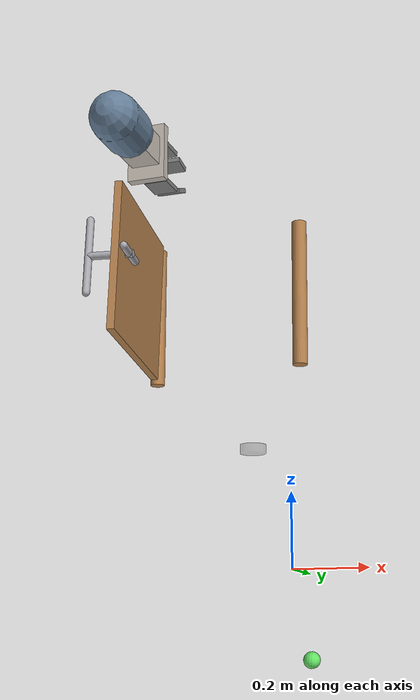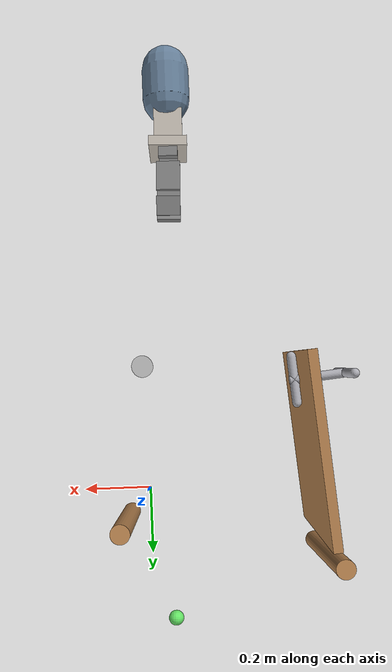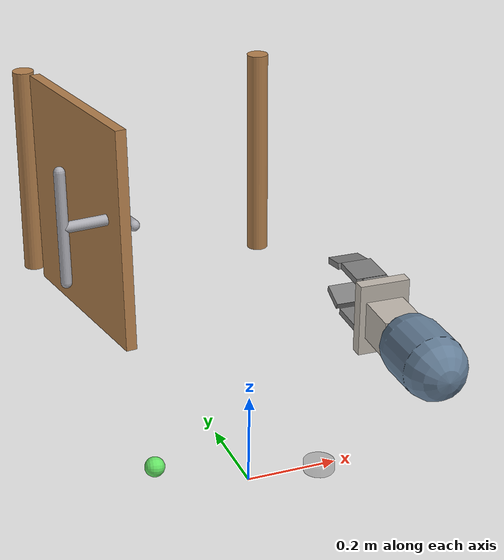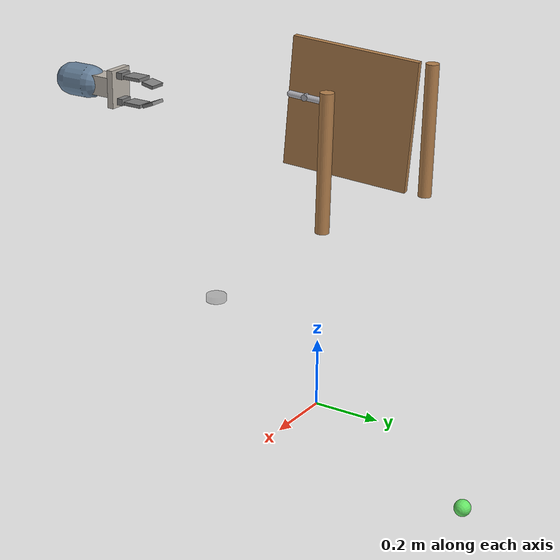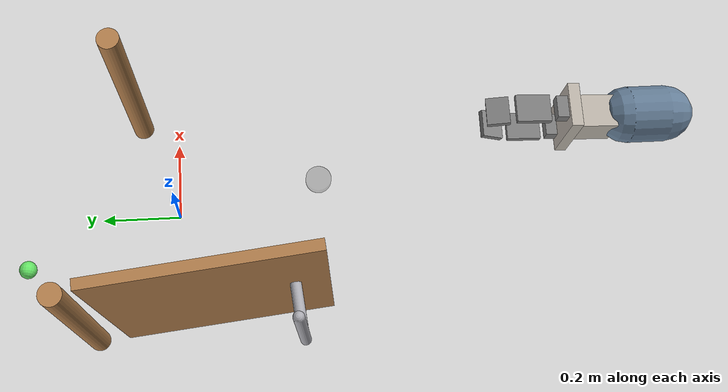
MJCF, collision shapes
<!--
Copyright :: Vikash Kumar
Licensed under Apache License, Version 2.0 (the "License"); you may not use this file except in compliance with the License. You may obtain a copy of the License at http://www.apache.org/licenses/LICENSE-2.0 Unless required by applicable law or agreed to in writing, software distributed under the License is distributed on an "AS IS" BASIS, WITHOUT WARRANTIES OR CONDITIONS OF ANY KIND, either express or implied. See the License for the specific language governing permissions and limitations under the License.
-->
<mujoco model='ADROIT-door(v1.5)'>

    <!-- ======= WORLD ======= -->
    <worldbody>
        <light directional='false' diffuse='.7 .7 .7' specular='0.03 0.03 0.03' pos='-1 -1.0 4.0' dir='1 1.0 -4'/>
        <camera name="fixed" pos="0.9 -0.7 0.7" quat="0.92388 0.382683 0 0" />
        <!-- Camera for the VIL paper -->
        <camera name="vil_camera" pos="0 -1.2 1.2" quat="0.92388 0.382683 0 0" />

        <!-- ======= MOCAP ======= -->
        <body name="vive_tracker" pos="0 -0.35 0.25" mocap="true">
            <inertial pos="0 0 0" mass="0.064" diaginertia="1.70667e-05 1.70667e-05 1.70667e-05" />
            <geom size="0.03 0.01" type="cylinder" contype="0" conaffinity="0" group="3" rgba="0.3 0.3 0.3 0.3" />
        </body>

        <!-- ======= HAND ======= -->
        <body name="forearm" pos="-0.1 -1.2 0.8" euler="-1.57 0 3.14">
            <inertial pos="0 0 0" mass="0.4"/>
            <joint name="ARRy" pos="0 0 0" axis="0 1 0" range="-0.5 1" damping="20" />
            <joint name="ARTz" pos="0 0 0" axis="0 0 1" type="slide" range="-0.3 1" damping="20" />
            <geom name="V_forearm" class="D_Vizual" pos="0 -.01 .181" euler="0 0 -1.57"  mesh="forearm_simple" />
            <geom name="C_forearm1" class="DC_Hand" size="0.05 0.033" pos="0 0 0.29" type="capsule" rgba="0.4 0.5 0.6 0.1" />

            <!-- ======= Adroit ======= -->
            <include file="closeDoor_model.xml"/>
        </body>

        <!-- ======= Satellite ======= -->
        <body name="satelite" pos="0.2 0.97 -0.9" euler="2.33 4.6 3.14" >
            <inertial pos="0 0 0" mass="4" />
            <geom name="Satellite" class="Satellite" pos="0 -.5 .2" euler="10 10 -11.57"  mesh="Satellite" size="0.05 0.25"/>
            <body name="frame" pos="-0.107339 0.0435293 0.447376" axisangle="0 0 1 -0.8">
                <geom size="0.02 0.2" pos="1.68 -0.88 0.22" type="cylinder" material="MatWood" euler="-0.1 4.63 0"/>
                <geom size="0.02 0.2" pos="1.72 -0.93 -0.22" type="cylinder" material="MatWood" euler="-0.1 4.63 0"/>
                <site name="S_handle_target" pos="0.75 -0.5 -.18" size="0.025"/>
                <body name="door" pos="1.7 -1.12 0.17" euler="-1.4 4.63 0">
                    <body name="door_main" pos="0 0 0" euler="-0.07 0 0">
                        <body>
                            <geom size="0.2 0.01 0.2" type="box" material="MatWood" name="door"/>
                            <joint name="door_hinge" pos="0.2 0 0" axis="0 0 -1" range="0 1.3" type="hinge" damping="10" stiffness="10"  />
                            <body name="latch" pos="-0.24 0.05 -0.025" euler="0 0 0">
                               <geom size="0.01 0.06" pos="0.1 -0.08 0" quat="0.707388 0.706825 0 0" type="cylinder" material="MatFoil" name="handle_1"/>
                                <geom size="0.01 0.1" pos="0.1 -0.14 0" type="capsule" material="MatFoil" name="handle_2"/>
                                <geom size="0.01 0.05" pos="0.1 -0.03 0" quat="0.707388 0 0.706825 0" type="capsule" material="MatFoil" name="handle_3"/>
                                <site name="S_handle" pos="0.1 -0.15 0.05" size="0.025" rgba="0 0 0 0"/>
                            </body>
                        </body>
                    </body>
                </body>
            </body>

            <!-- ======= Adroit ======= -->
            <include file="../HST.xml"/>
        </body>

    </worldbody>

    <actuator>
        <general name="A_ARRy" joint="ARRy" ctrlrange="-1 1" biastype="affine" gainprm="200 0 0" biasprm="0 -200 0" />
        <general name="A_ARTz" joint="ARTz" ctrlrange="-0.3 1" biastype="affine" gainprm="200 0 0" biasprm="0 -200 0" />
    </actuator>
    <include file='closeDoor_assets.xml'/>

</mujoco>

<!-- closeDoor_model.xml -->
<mujocoinclude>
    <body name="wrist" pos="0 0 0.396">
        <geom name="V_wrist" class="D_Vizual" mesh="wrist" />
        <geom name="C_wrist" class="DC_Hand" size="0.015 0.01" quat="0.707107 0.707107 0 0" type="capsule" rgba="0.4 0.5 0.6 0.1" />
        <body name="palm" pos="0 0 0.034">
            <site name="S_grasp"  type="sphere" rgba="0 0 0 0" size="0.01" pos=".001 0 0.12" quat="0.0087 -0.6 -0.0034 -0.81  " />

            <body pos="0 0 0.01" euler="0 -1.6 0" name="robotic_hand">
                <!-- GRIPPER BASE-->
                <site name="sBase" pos="0.01 0 0" size="0.005 0 0" rgba="0 0 0 0"/>
                <geom class="base" size="0.058 0.04 0.01" pos="-0.01 0 0"/>
                <geom size="0.04 0.03 0.03" pos="-0.05 0 0" type="box" class="Silver"/>
                <!-- FINGERS RIGHT -->
                <body pos="0 0.74 0">
                    <body pos="0.01 -0.7 0">
                        <geom class="gripper_sticks_main" name="gripper_sticks_base_right" />
                        <body pos="0.05 0 0" >
                            <geom class="gripper_sticks_middle" name="gripper_sticks_middle_right"/>
                            <site name="s_gripper_right" pos="0 -0.08 0" size="0.005 0 0" rgba="0.5 0.5 0.5 0"/>
                            <body pos="0.06 -0.01 0" euler="0 0 0.2">
                                <geom class="gripper_sticks_end" name="gripper_sticks_end_right" quat="0.2 0 0 1" friction="-10"/>
                                <site name="s_gripper_right_top" pos="0.018 -0.01 0" size="0.005 0 0" rgba="0 0 0 0"/>
                            </body>
                        </body>
                    </body>
                </body>

                <!-- FINGER LEFT -->
                <body pos="0 0.66 0">
                    <body pos="0.01 -0.7 0">
                        <geom class="gripper_sticks_main" name="gripper_sticks_base_left"/>
                        <body pos="0.05 0 0" >
                            <geom class="gripper_sticks_middle" name="gripper_sticks_middle_left"/>
                            <site name="s_gripper_left" pos="0 0.08 0" size="0.005 0 0" rgba="0.5 0.5 0.5 0"/>
                            <body pos="0.06 0.01 0" euler="0 0 -0.2">
                                <geom class="gripper_sticks_end" name="gripper_sticks_end_left" quat="-0.3 0 0 1" friction="-10"/>
                                <site name="s_gripper_left_top" pos="0.018 0.013 0" size="0.005 0 0" rgba="0 0 0 0"/>
                            </body>
                        </body>
                    </body>
                </body>
            </body>
        </body>
    </body>
</mujocoinclude>

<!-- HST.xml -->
<mujocoinclude>
    <body name="Satellite" pos="0 0.7 0.396">
        <inertial pos="0.003 0 0.016" quat="0.504234 0.49623 0.49523 0.504234" mass="0.3" diaginertia="0.001 0.001 0.001" />

    </body>
</mujocoinclude>

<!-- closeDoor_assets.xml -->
<mujocoinclude>
     <compiler angle="radian" meshdir='../resources/meshes/' texturedir='../resources/textures/' />
    <option apirate="200" iterations="20" noslip_iterations="20"/>
    <size njmax="500" nconmax="100" nstack="600000" nuser_body="9" nuser_jnt="1" nuser_site="1" nuser_tendon="1" nuser_actuator="16" nuser_sensor="1" />
    <visual>
        <global offwidth="3024" offheight="1680" />
        <quality shadowsize="4096" offsamples="8" />
        <map force="0.1" fogend="5" />
    </visual>
    <default class="main">
        <mesh scale="0.001 0.001 0.001" />
        <joint limited="true" margin="0.01" armature="0.001" damping="0.05" frictionloss="0.001" />
        <geom friction="1 0.5 0.01" margin="0.0005" />
        <site size="0.005 0 0" rgba="0.4 0.9 0.4 1" />
        <tendon limited="true" />
        <general ctrllimited="true" ctrlrange="-1 1" user="0 1 0.03 0.0939711 0.513477 0.0358776 1.23598 8.40409 0.485031 6.04244 1.02187 0.175297 0.121642 0 0 0" />
        <default class="D_Touch">
            <site size="0.009 0.004 0.013" group="4" type="box" rgba="0.8 0.8 0.8 0.15" />
            <general user="0 1 0.03 0.0939711 0.513477 0.0358776 1.23598 8.40409 0.485031 6.04244 1.02187 0.175297 0.121642 0 0 0" />
        </default>
        <default class="DC_Hand">
            <geom conaffinity="0" group="4" material="MatColl" />
            <general user="0 1 0.03 0.0939711 0.513477 0.0358776 1.23598 8.40409 0.485031 6.04244 1.02187 0.175297 0.121642 0 0 0" />
        </default>
        <default class="D_Vizual">
            <geom type="mesh" contype="0" conaffinity="0" group="1" material="MatViz" />
            <general user="0 1 0.03 0.0939711 0.513477 0.0358776 1.23598 8.40409 0.485031 6.04244 1.02187 0.175297 0.121642 0 0 0" />
        </default>
        <default class="Satellite">
            <geom type="mesh" contype="0" conaffinity="0" group="1" material="MatWood" />
            <general user="0 1 0.03 0.0939711 0.513477 0.0358776 1.23598 8.40409 0.485031 6.04244 1.02187 0.175297 0.121642 0 0 0" />
        </default>
    </default>
    <asset>
        <texture type="cube" name="texgeom" builtin="flat" mark="cross" rgb1="0.3 0.6 0.5" rgb2="0.3 0.6 0.5" width="127" height="762" />
        <texture type="cube" name="metal" file="metal.png" />
        <texture type="cube" name="dark_metal" file="dark_metal.png" />
        <texture type="2d" name="wood2d" file="metal.png" />
        <texture type="cube" name="square" file="square.png" />
        <texture type="cube" name="foil" file="silverRaw.png" />
        <texture type="cube" name="woodb" file="metal.png" />
        <texture type="2d" name="groundplane" builtin="checker" rgb1="0.2 0.3 0.4" rgb2="0.1 0.2 0.3" width="100" height="100" />
        <texture type="2d" name="marble2d" file="marble.png" />
        <texture type="cube" name="marblecube" file="marble.png" />
        <material name="MatColl" specular="1" shininess="0.3" reflectance="0.5" rgba="0.4 0.5 0.6 1" />
        <material name="MatViz" specular="0.75" shininess="0.1" reflectance="0.5" texture="dark_metal" />
        <material name="MatGnd" specular="0.3" shininess="0.3" reflectance="0.3" rgba="0.5 0.55 0.5 1" />
        <material name="object" texture="texgeom" />
        <material name="groundplane" texture="groundplane" texrepeat="10 10" />
        <material name="table2d" texture="marble2d" reflectance="0.3" rgba="0.8 0.8 0.8 1" />
        <material name="tablecube" texture="marblecube" rgba="0.8 0.8 0.8 1" />
        <material name="MatFoil" texture="foil" specular="1" shininess="0.3" rgba="0.9 0.9 0.9 1" />
        <material name="MatPlane" specular="0.3" shininess="0.3" rgba="0.3 0.3 0.2 1" />
        <material name="MatWood" texture="metal" texrepeat="3 3" specular="0.4" shininess="0.1" />
        <material name="MatSquare" texture="square" specular="1" shininess="0.6" rgba="0.8 0.8 0.8 1" />
        <material name="MatWoodR" texture="metal" specular="1" shininess="0.3" rgba="1 0.5 0.5 1" />
        <material name="MatWoodG" texture="metal" specular="1" shininess="0.3" rgba="0.2 1 0.2 1" />
        <material name="MatWoodB" texture="woodb" specular="1" shininess="0.3" />
        <mesh name="forearm_simple" file="forearm_simple.stl" scale="1 1 1"/>
        <mesh name="wrist" file="wrist.stl" />
        <mesh name="palm" file="palm.stl" />
        <mesh name="lfmetacarpal" file="lfmetacarpal.stl" />
        <mesh name="knuckle" file="knuckle.stl" />
        <mesh name="TH3_z" file="TH3_z.stl" />
        <mesh name="TH2_z" file="TH2_z.stl" />
        <mesh name="TH1_z" file="TH1_z.stl" />
        <mesh name="Satellite" file="HST2.stl" scale="0.3 0.3 0.3" />

        <material name="floor_mat" specular="0" shininess="0.5" reflectance="0" rgba="0.2 0.2 0.2 1"/>
        <material name="table_mat" specular="0" shininess="0.5" reflectance="0" rgba="0.93 0.93 0.93 1"/>
        <material name="block_mat" specular="0" shininess="0.5" reflectance="0" rgba="0.2 0.2 0.2 1"/>
        <material name="puck_mat" specular="0" shininess="0.5" reflectance="0" rgba="0.2 0.2 0.2 1"/>
        <material name="robot0:geomMat" shininess="0.03" specular="0.4"/>
        <material name="robot0:gripper_finger_mat" shininess="0.03" specular="0.4" reflectance="0"/>
        <material name="robot0:gripper_mat" shininess="0.03" specular="0.4" reflectance="0"/>
        <material name="robot0:arm_mat" shininess="0.03" specular="0.4" reflectance="0"/>
        <material name="robot0:head_mat" shininess="0.03" specular="0.4" reflectance="0"/>
        <material name="robot0:torso_mat" shininess="0.03" specular="0.4" reflectance="0"/>
        <material name="robot0:base_mat" shininess="0.03" specular="0.4" reflectance="0"/>

        <mesh file="base_link_collision.stl" name="robot0:base_link" scale="0.3 0.3 0.3"/>
        <mesh file="bellows_link_collision.stl" name="robot0:bellows_link" scale="0.3 0.3 0.3"/>
        <mesh file="elbow_flex_link_collision.stl" name="robot0:elbow_flex_link" scale="0.5 0.5 0.5"/>
        <mesh file="estop_link.stl" name="robot0:estop_link" scale="0.3 0.3 0.3"/>
        <mesh file="forearm_roll_link_collision.stl" name="robot0:forearm_roll_link" scale="0.5 0.5 0.5"/>
        <mesh file="gripper_link.stl" name="robot0:gripper_link" scale="1 0.3 0.5"/>
        <mesh file="head_pan_link_collision.stl" name="robot0:head_pan_link" scale="0.3 0.3 0.3"/>
        <mesh file="head_tilt_link_collision.stl" name="robot0:head_tilt_link" scale="0.3 0.3 0.3"/>
        <mesh file="l_wheel_link_collision.stl" name="robot0:l_wheel_link" scale="0.3 0.3 0.3"/>
        <mesh file="laser_link.stl" name="robot0:laser_link" scale="0.3 0.3 0.3"/>
        <mesh file="r_wheel_link_collision.stl" name="robot0:r_wheel_link" scale="0.3 0.3 0.3"/>
        <mesh file="torso_lift_link_collision.stl" name="robot0:torso_lift_link" scale="0.3 0.3 0.3"/>
        <mesh file="shoulder_pan_link_collision.stl" name="robot0:shoulder_pan_link" scale="0.5 0.5 0.5"/>
        <mesh file="shoulder_lift_link_collision.stl" name="robot0:shoulder_lift_link" scale="0.5 0.5 0.5"/>
        <mesh file="upperarm_roll_link_collision.stl" name="robot0:upperarm_roll_link" scale="0.5 0.5 0.5"/>
        <mesh file="wrist_flex_link_collision.stl" name="robot0:wrist_flex_link" scale="0.5 0.5 0.5" />
        <mesh file="wrist_roll_link_collision.stl" name="robot0:wrist_roll_link" scale="0.3 0.3 0.3"/>
        <mesh file="torso_fixed_link.stl" name="robot0:torso_fixed_link" scale="0.3 0.3 0.3"/>
    </asset>

     <contact>
        <pair geom1="door" geom2="gripper_sticks_end_right" solimp=".999 .999 .001" solref="0.001 1"></pair>
        <pair geom1="door" geom2="gripper_sticks_end_left" solimp=".999 .999 .001" solref="0.001 1"></pair>

         <pair geom1="handle_1" geom2="gripper_sticks_end_right" solimp=".999 .999 .001" solref="0.001 1"></pair>
        <pair geom1="handle_1" geom2="gripper_sticks_end_left" solimp=".999 .999 .001" solref="0.001 1"></pair>

         <pair geom1="handle_2" geom2="gripper_sticks_end_right" solimp=".999 .999 .001" solref="0.001 1"></pair>
        <pair geom1="handle_2" geom2="gripper_sticks_end_left" solimp=".999 .999 .001" solref="0.001 1"></pair>

         <pair geom1="handle_3" geom2="gripper_sticks_end_right" solimp=".999 .999 .001" solref="0.001 1"></pair>
        <pair geom1="handle_3" geom2="gripper_sticks_end_left" solimp=".999 .999 .001" solref="0.001 1"></pair>

         <pair geom1="handle_1" geom2="gripper_sticks_middle_right" solimp=".999 .999 .001" solref="0.001 1"></pair>
        <pair geom1="handle_1" geom2="gripper_sticks_middle_left" solimp=".999 .999 .001" solref="0.001 1"></pair>

         <pair geom1="handle_2" geom2="gripper_sticks_middle_right" solimp=".999 .999 .001" solref="0.001 1"></pair>
        <pair geom1="handle_2" geom2="gripper_sticks_middle_left" solimp=".999 .999 .001" solref="0.001 1"></pair>

         <pair geom1="handle_3" geom2="gripper_sticks_middle_right" solimp=".999 .999 .001" solref="0.001 1"></pair>
        <pair geom1="handle_3" geom2="gripper_sticks_middle_left" solimp=".999 .999 .001" solref="0.001 1"></pair>

    </contact>

   <actuator>

    </actuator>

<default class="robot0:fetch">

            <default class="robot0:grey">
                <geom rgba="0.356 0.361 0.376 1.0"></geom>
            </default>
            <default class="robot0:blue">
                <geom rgba="0.086 0.506 0.767 1.0"></geom>
            </default>
            <default class="robot0:white">
                <geom rgba="0.8 0.8 0.8 1"></geom>
            </default>

            <default class="Silver">
                <geom material="MatViz" />
            </default>

<!--            soft gripper-->
            <!-- CHANGE HERE-->
        <!-- All changes rearding joint dynamics, box sizes, etc. can be adjusted from here! Digging
        In XML is not advised/-->
        <default class="gripper_sticks_main">
            <geom type="box" size="0.01 0.01 0.02" mass="0.1" contype="1" conaffinity="1"/>
        </default>
        <default class="gripper_sticks_middle">
            <geom type="box" size="0.03 0.005 0.025" mass="0.2" contype="1" conaffinity="1"/>
        </default>
        <default class="gripper_sticks_end">
            <geom type="box" size="0.02 0.005 0.025" mass="0.1" contype="1" conaffinity="1"/>
        </default>

        <default class="base">
            <geom type="box" quat="0.7 0.7 0.7 0.7" material="MatViz"/>
        </default>
        </default>
 </mujocoinclude>
